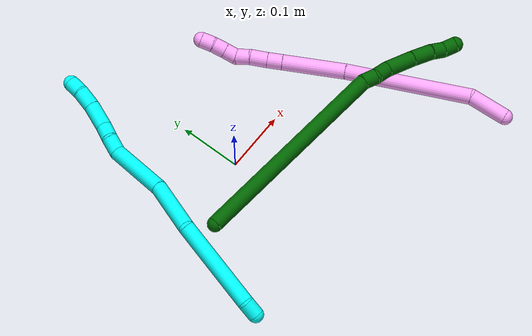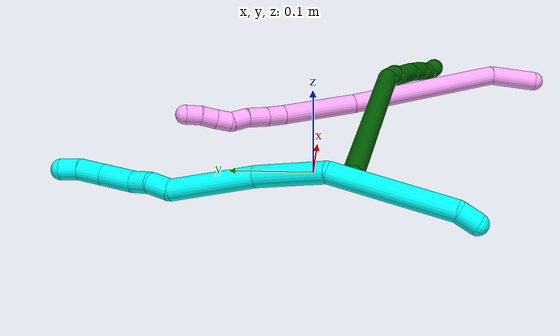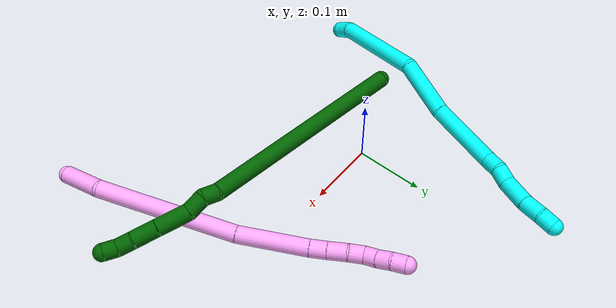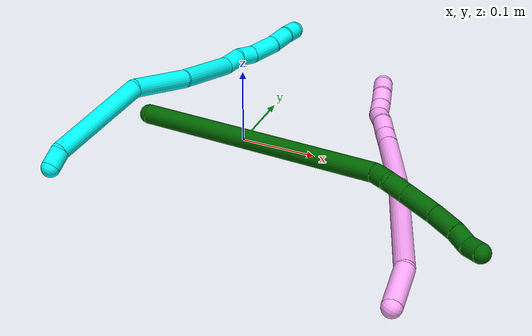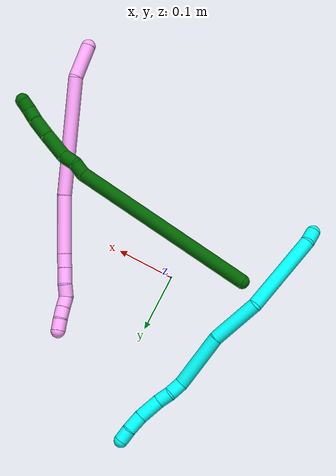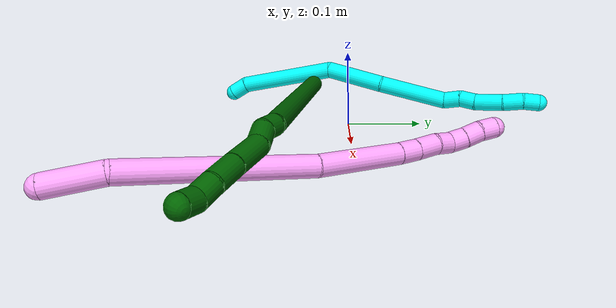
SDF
<sdf version="1.7">
 <world name="default">
  <model name="photoneo_s_sensor">
   <static>1</static>
   <pose>0 0 2 1.57079 1.57079 3.14159</pose>
   <link name="link">
    <inertial><mass>0.1</mass></inertial>
    <sensor name="sensor" type="depth">
     <update_rate>30</update_rate>
     <camera>
      <horizontal_fov>1.22</horizontal_fov>
      <image><width>1920</width><height>1200</height><format>B8G8R8</format></image>
      <clip><near>0.1</near><far>4</far></clip>
      <depth_camera><output>points</output></depth_camera>
     </camera>
     <plugin name="camera_plugin" filename="libgazebo_ros_depth_camera.so">
      <baseline>0.2</baseline>
      <alwaysOn>1</alwaysOn>
      <updateRate>0.0</updateRate>
      <cameraName>camera_ir</cameraName>
      <imageTopicName>/camera/color/image_raw</imageTopicName>
      <cameraInfoTopicName>/camera/color/camera_info</cameraInfoTopicName>
      <depthImageTopicName>/camera/depth/image_raw</depthImageTopicName>
      <depthImageCameraInfoTopicName>/camera/depth/camera_info</depthImageCameraInfoTopicName>
      <pointCloudTopicName>/camera/depth/points</pointCloudTopicName>
      <frameName>fr_optical</frameName>
      <pointCloudCutoff>0.1</pointCloudCutoff>
      <pointCloudCutoffMax>2.0</pointCloudCutoffMax>
      <distortionK1>0</distortionK1>
      <distortionK2>0</distortionK2>
      <distortionK3>0</distortionK3>
      <distortionT1>0</distortionT1>
      <distortionT2>0</distortionT2>
      <CxPrime>0</CxPrime>
      <Cx>0</Cx>
      <Cy>0</Cy>
      <focalLength>0</focalLength>
      <hackBaseline>0</hackBaseline>
     </plugin>
    </sensor>
   </link>
  </model>
  <model name="3">
   <static>0</static>
   <link name="3">
    <collision name="collision-cylinder-e_1_1_4">
     <pose>-0.000288 -7e-06 0.012324 0.000545 -0.02337 -6e-06</pose>
     <geometry><cylinder><radius>0.0125</radius><length>0.024654</length></cylinder></geometry>
     <surface>
      <friction><ode><mu>1.16</mu><mu2>1.16</mu2><slip1>0</slip1><slip2>0</slip2></ode></friction>
      <contact><ode><kp>1e+06</kp><kd>1</kd><max_vel>0</max_vel><min_depth>0.001</min_depth></ode></contact>
     </surface>
    </collision>
    <visual name="visual-cylinder-e_1_1_4">
     <pose>-0.000288 -7e-06 0.012324 0.000545 -0.02337 -6e-06</pose>
     <geometry><cylinder><radius>0.0125</radius><length>0.024654</length></cylinder></geometry>
     <material><ambient>0.003922 1 0.996078 1</ambient></material>
    </visual>
    <collision name="collision-cylinder-e_2_4_5">
     <pose>0.011048 0.023267 0.091746 -0.333964 0.162235 -0.027403</pose>
     <geometry><cylinder><radius>0.0125</radius><length>0.143935</length></cylinder></geometry>
     <surface>
      <friction><ode><mu>1.16</mu><mu2>1.16</mu2><slip1>0</slip1><slip2>0</slip2></ode></friction>
      <contact><ode><kp>1e+06</kp><kd>1</kd><max_vel>0</max_vel><min_depth>0.001</min_depth></ode></contact>
     </surface>
    </collision>
    <visual name="visual-cylinder-e_2_4_5">
     <pose>0.011048 0.023267 0.091746 -0.333964 0.162235 -0.027403</pose>
     <geometry><cylinder><radius>0.0125</radius><length>0.143935</length></cylinder></geometry>
     <material><ambient>0.003922 1 0.996078 1</ambient></material>
    </visual>
    <collision name="collision-cylinder-e_3_5_6">
     <pose>0.038435 0.073854 0.189357 -0.730014 0.367446 -0.141776</pose>
     <geometry><cylinder><radius>0.0125</radius><length>0.087751</length></cylinder></geometry>
     <surface>
      <friction><ode><mu>1.16</mu><mu2>1.16</mu2><slip1>0</slip1><slip2>0</slip2></ode></friction>
      <contact><ode><kp>1e+06</kp><kd>1</kd><max_vel>0</max_vel><min_depth>0.001</min_depth></ode></contact>
     </surface>
    </collision>
    <visual name="visual-cylinder-e_3_5_6">
     <pose>0.038435 0.073854 0.189357 -0.730014 0.367446 -0.141776</pose>
     <geometry><cylinder><radius>0.0125</radius><length>0.087751</length></cylinder></geometry>
     <material><ambient>0.003922 1 0.996078 1</ambient></material>
    </visual>
    <collision name="collision-cylinder-e_4_6_7">
     <pose>0.062235 0.136342 0.255217 -0.783032 0.15981 -0.066091</pose>
     <geometry><cylinder><radius>0.0125</radius><length>0.10103</length></cylinder></geometry>
     <surface>
      <friction><ode><mu>1.16</mu><mu2>1.16</mu2><slip1>0</slip1><slip2>0</slip2></ode></friction>
      <contact><ode><kp>1e+06</kp><kd>1</kd><max_vel>0</max_vel><min_depth>0.001</min_depth></ode></contact>
     </surface>
    </collision>
    <visual name="visual-cylinder-e_4_6_7">
     <pose>0.062235 0.136342 0.255217 -0.783032 0.15981 -0.066091</pose>
     <geometry><cylinder><radius>0.0125</radius><length>0.10103</length></cylinder></geometry>
     <material><ambient>0.003922 1 0.996078 1</ambient></material>
    </visual>
    <collision name="collision-cylinder-e_5_7_8">
     <pose>0.07436 0.175498 0.302337 -0.325653 0.317785 -0.052638</pose>
     <geometry><cylinder><radius>0.0125</radius><length>0.026161</length></cylinder></geometry>
     <surface>
      <friction><ode><mu>1.16</mu><mu2>1.16</mu2><slip1>0</slip1><slip2>0</slip2></ode></friction>
      <contact><ode><kp>1e+06</kp><kd>1</kd><max_vel>0</max_vel><min_depth>0.001</min_depth></ode></contact>
     </surface>
    </collision>
    <visual name="visual-cylinder-e_5_7_8">
     <pose>0.07436 0.175498 0.302337 -0.325653 0.317785 -0.052638</pose>
     <geometry><cylinder><radius>0.0125</radius><length>0.026161</length></cylinder></geometry>
     <material><ambient>0.003922 1 0.996078 1</ambient></material>
    </visual>
    <collision name="collision-cylinder-e_6_8_9">
     <pose>0.083747 0.185766 0.322446 -0.646593 0.469525 -0.159929</pose>
     <geometry><cylinder><radius>0.0125</radius><length>0.023425</length></cylinder></geometry>
     <surface>
      <friction><ode><mu>1.16</mu><mu2>1.16</mu2><slip1>0</slip1><slip2>0</slip2></ode></friction>
      <contact><ode><kp>1e+06</kp><kd>1</kd><max_vel>0</max_vel><min_depth>0.001</min_depth></ode></contact>
     </surface>
    </collision>
    <visual name="visual-cylinder-e_6_8_9">
     <pose>0.083747 0.185766 0.322446 -0.646593 0.469525 -0.159929</pose>
     <geometry><cylinder><radius>0.0125</radius><length>0.023425</length></cylinder></geometry>
     <material><ambient>0.003922 1 0.996078 1</ambient></material>
    </visual>
    <collision name="collision-cylinder-e_7_9_10">
     <pose>0.095947 0.200497 0.348006 -0.4556 0.345371 -0.080827</pose>
     <geometry><cylinder><radius>0.0125</radius><length>0.040766</length></cylinder></geometry>
     <surface>
      <friction><ode><mu>1.16</mu><mu2>1.16</mu2><slip1>0</slip1><slip2>0</slip2></ode></friction>
      <contact><ode><kp>1e+06</kp><kd>1</kd><max_vel>0</max_vel><min_depth>0.001</min_depth></ode></contact>
     </surface>
    </collision>
    <visual name="visual-cylinder-e_7_9_10">
     <pose>0.095947 0.200497 0.348006 -0.4556 0.345371 -0.080827</pose>
     <geometry><cylinder><radius>0.0125</radius><length>0.040766</length></cylinder></geometry>
     <material><ambient>0.003922 1 0.996078 1</ambient></material>
    </visual>
    <collision name="collision-cylinder-e_8_10_11">
     <pose>0.105803 0.214815 0.37853 -0.416133 0.200512 -0.042469</pose>
     <geometry><cylinder><radius>0.0125</radius><length>0.02968</length></cylinder></geometry>
     <surface>
      <friction><ode><mu>1.16</mu><mu2>1.16</mu2><slip1>0</slip1><slip2>0</slip2></ode></friction>
      <contact><ode><kp>1e+06</kp><kd>1</kd><max_vel>0</max_vel><min_depth>0.001</min_depth></ode></contact>
     </surface>
    </collision>
    <visual name="visual-cylinder-e_8_10_11">
     <pose>0.105803 0.214815 0.37853 -0.416133 0.200512 -0.042469</pose>
     <geometry><cylinder><radius>0.0125</radius><length>0.02968</length></cylinder></geometry>
     <material><ambient>0.003922 1 0.996078 1</ambient></material>
    </visual>
    <collision name="collision-cylinder-e_9_11_2">
     <pose>0.110356 0.227239 0.400902 -0.625115 0.141842 -0.045905</pose>
     <geometry><cylinder><radius>0.0125</radius><length>0.022597</length></cylinder></geometry>
     <surface>
      <friction><ode><mu>1.16</mu><mu2>1.16</mu2><slip1>0</slip1><slip2>0</slip2></ode></friction>
      <contact><ode><kp>1e+06</kp><kd>1</kd><max_vel>0</max_vel><min_depth>0.001</min_depth></ode></contact>
     </surface>
    </collision>
    <visual name="visual-cylinder-e_9_11_2">
     <pose>0.110356 0.227239 0.400902 -0.625115 0.141842 -0.045905</pose>
     <geometry><cylinder><radius>0.0125</radius><length>0.022597</length></cylinder></geometry>
     <material><ambient>0.003922 1 0.996078 1</ambient></material>
    </visual>
    <collision name="collision-sphere-2">
     <pose>0.111953 0.233784 0.409972 0 -0 0</pose>
     <geometry><sphere><radius>0.0125</radius></sphere></geometry>
     <surface>
      <friction><ode><mu>1.16</mu><mu2>1.16</mu2><slip1>0</slip1><slip2>0</slip2></ode></friction>
      <contact><ode><kp>1e+06</kp><kd>1</kd><max_vel>0</max_vel><min_depth>0.001</min_depth></ode></contact>
     </surface>
    </collision>
    <visual name="visual-sphere-2">
     <pose>0.111953 0.233784 0.409972 0 -0 0</pose>
     <geometry><sphere><radius>0.0125</radius></sphere></geometry>
     <material><ambient>0.003922 1 0.996078 1</ambient></material>
    </visual>
    <collision name="collision-sphere-11">
     <pose>0.108759 0.220693 0.391832 0 -0 0</pose>
     <geometry><sphere><radius>0.0125</radius></sphere></geometry>
     <surface>
      <friction><ode><mu>1.16</mu><mu2>1.16</mu2><slip1>0</slip1><slip2>0</slip2></ode></friction>
      <contact><ode><kp>1e+06</kp><kd>1</kd><max_vel>0</max_vel><min_depth>0.001</min_depth></ode></contact>
     </surface>
    </collision>
    <visual name="visual-sphere-11">
     <pose>0.108759 0.220693 0.391832 0 -0 0</pose>
     <geometry><sphere><radius>0.0125</radius></sphere></geometry>
     <material><ambient>0.003922 1 0.996078 1</ambient></material>
    </visual>
    <collision name="collision-sphere-10">
     <pose>0.102848 0.208936 0.365229 0 -0 0</pose>
     <geometry><sphere><radius>0.0125</radius></sphere></geometry>
     <surface>
      <friction><ode><mu>1.16</mu><mu2>1.16</mu2><slip1>0</slip1><slip2>0</slip2></ode></friction>
      <contact><ode><kp>1e+06</kp><kd>1</kd><max_vel>0</max_vel><min_depth>0.001</min_depth></ode></contact>
     </surface>
    </collision>
    <visual name="visual-sphere-10">
     <pose>0.102848 0.208936 0.365229 0 -0 0</pose>
     <geometry><sphere><radius>0.0125</radius></sphere></geometry>
     <material><ambient>0.003922 1 0.996078 1</ambient></material>
    </visual>
    <collision name="collision-sphere-9">
     <pose>0.089046 0.192058 0.330783 0 -0 0</pose>
     <geometry><sphere><radius>0.0125</radius></sphere></geometry>
     <surface>
      <friction><ode><mu>1.16</mu><mu2>1.16</mu2><slip1>0</slip1><slip2>0</slip2></ode></friction>
      <contact><ode><kp>1e+06</kp><kd>1</kd><max_vel>0</max_vel><min_depth>0.001</min_depth></ode></contact>
     </surface>
    </collision>
    <visual name="visual-sphere-9">
     <pose>0.089046 0.192058 0.330783 0 -0 0</pose>
     <geometry><sphere><radius>0.0125</radius></sphere></geometry>
     <material><ambient>0.003922 1 0.996078 1</ambient></material>
    </visual>
    <collision name="collision-sphere-4">
     <pose>-0.000576 -1.3e-05 0.024648 0 -0 0</pose>
     <geometry><sphere><radius>0.0125</radius></sphere></geometry>
     <surface>
      <friction><ode><mu>1.16</mu><mu2>1.16</mu2><slip1>0</slip1><slip2>0</slip2></ode></friction>
      <contact><ode><kp>1e+06</kp><kd>1</kd><max_vel>0</max_vel><min_depth>0.001</min_depth></ode></contact>
     </surface>
    </collision>
    <visual name="visual-sphere-4">
     <pose>-0.000576 -1.3e-05 0.024648 0 -0 0</pose>
     <geometry><sphere><radius>0.0125</radius></sphere></geometry>
     <material><ambient>0.003922 1 0.996078 1</ambient></material>
    </visual>
    <collision name="collision-sphere-1">
     <geometry><sphere><radius>0.0125</radius></sphere></geometry>
     <surface>
      <friction><ode><mu>1.16</mu><mu2>1.16</mu2><slip1>0</slip1><slip2>0</slip2></ode></friction>
      <contact><ode><kp>1e+06</kp><kd>1</kd><max_vel>0</max_vel><min_depth>0.001</min_depth></ode></contact>
     </surface>
    </collision>
    <visual name="visual-sphere-1">
     <geometry><sphere><radius>0.0125</radius></sphere></geometry>
     <material><ambient>0.003922 1 0.996078 1</ambient></material>
    </visual>
    <collision name="collision-sphere-8">
     <pose>0.078448 0.179473 0.31411 0 -0 0</pose>
     <geometry><sphere><radius>0.0125</radius></sphere></geometry>
     <surface>
      <friction><ode><mu>1.16</mu><mu2>1.16</mu2><slip1>0</slip1><slip2>0</slip2></ode></friction>
      <contact><ode><kp>1e+06</kp><kd>1</kd><max_vel>0</max_vel><min_depth>0.001</min_depth></ode></contact>
     </surface>
    </collision>
    <visual name="visual-sphere-8">
     <pose>0.078448 0.179473 0.31411 0 -0 0</pose>
     <geometry><sphere><radius>0.0125</radius></sphere></geometry>
     <material><ambient>0.003922 1 0.996078 1</ambient></material>
    </visual>
    <collision name="collision-sphere-5">
     <pose>0.022673 0.046548 0.158845 0 -0 0</pose>
     <geometry><sphere><radius>0.0125</radius></sphere></geometry>
     <surface>
      <friction><ode><mu>1.16</mu><mu2>1.16</mu2><slip1>0</slip1><slip2>0</slip2></ode></friction>
      <contact><ode><kp>1e+06</kp><kd>1</kd><max_vel>0</max_vel><min_depth>0.001</min_depth></ode></contact>
     </surface>
    </collision>
    <visual name="visual-sphere-5">
     <pose>0.022673 0.046548 0.158845 0 -0 0</pose>
     <geometry><sphere><radius>0.0125</radius></sphere></geometry>
     <material><ambient>0.003922 1 0.996078 1</ambient></material>
    </visual>
    <collision name="collision-sphere-6">
     <pose>0.054196 0.101161 0.219869 0 -0 0</pose>
     <geometry><sphere><radius>0.0125</radius></sphere></geometry>
     <surface>
      <friction><ode><mu>1.16</mu><mu2>1.16</mu2><slip1>0</slip1><slip2>0</slip2></ode></friction>
      <contact><ode><kp>1e+06</kp><kd>1</kd><max_vel>0</max_vel><min_depth>0.001</min_depth></ode></contact>
     </surface>
    </collision>
    <visual name="visual-sphere-6">
     <pose>0.054196 0.101161 0.219869 0 -0 0</pose>
     <geometry><sphere><radius>0.0125</radius></sphere></geometry>
     <material><ambient>0.003922 1 0.996078 1</ambient></material>
    </visual>
    <collision name="collision-sphere-7">
     <pose>0.070273 0.171522 0.290564 0 -0 0</pose>
     <geometry><sphere><radius>0.0125</radius></sphere></geometry>
     <surface>
      <friction><ode><mu>1.16</mu><mu2>1.16</mu2><slip1>0</slip1><slip2>0</slip2></ode></friction>
      <contact><ode><kp>1e+06</kp><kd>1</kd><max_vel>0</max_vel><min_depth>0.001</min_depth></ode></contact>
     </surface>
    </collision>
    <visual name="visual-sphere-7">
     <pose>0.070273 0.171522 0.290564 0 -0 0</pose>
     <geometry><sphere><radius>0.0125</radius></sphere></geometry>
     <material><ambient>0.003922 1 0.996078 1</ambient></material>
    </visual>
    <inertial>
     <pose>0.049392 0.104462 0.211708 0 -0 0</pose>
     <mass>0.5</mass>
     <inertia>
      <ixx>0.0004</ixx>
      <ixy>0</ixy>
      <ixz>0</ixz>
      <iyy>0.000365</iyy>
      <iyz>0</iyz>
      <izz>-0.000239</izz>
     </inertia>
    </inertial>
   </link>
   <pose>-0.181386 -0.180864 0.012488 -1.00466 0.156921 -0.034101</pose>
  </model>
  <model name="4">
   <static>0</static>
   <link name="4">
    <collision name="collision-cylinder-e_1_1_4">
     <pose>0.015401 0.021391 0.014574 -0.972699 0.536748 -0.288775</pose>
     <geometry><cylinder><radius>0.0125</radius><length>0.060239</length></cylinder></geometry>
     <surface>
      <friction><ode><mu>1.16</mu><mu2>1.16</mu2><slip1>0</slip1><slip2>0</slip2></ode></friction>
      <contact><ode><kp>1e+06</kp><kd>1</kd><max_vel>0</max_vel><min_depth>0.001</min_depth></ode></contact>
     </surface>
    </collision>
    <visual name="visual-cylinder-e_1_1_4">
     <pose>0.015401 0.021391 0.014574 -0.972699 0.536748 -0.288775</pose>
     <geometry><cylinder><radius>0.0125</radius><length>0.060239</length></cylinder></geometry>
     <material><ambient>1 0.65098 0.996078 1</ambient></material>
    </visual>
    <collision name="collision-cylinder-e_2_4_5">
     <pose>0.079528 0.130399 0.045098 -1.39074 0.500633 -0.420378</pose>
     <geometry><cylinder><radius>0.0125</radius><length>0.203032</length></cylinder></geometry>
     <surface>
      <friction><ode><mu>1.16</mu><mu2>1.16</mu2><slip1>0</slip1><slip2>0</slip2></ode></friction>
      <contact><ode><kp>1e+06</kp><kd>1</kd><max_vel>0</max_vel><min_depth>0.001</min_depth></ode></contact>
     </surface>
    </collision>
    <visual name="visual-cylinder-e_2_4_5">
     <pose>0.079528 0.130399 0.045098 -1.39074 0.500633 -0.420378</pose>
     <geometry><cylinder><radius>0.0125</radius><length>0.203032</length></cylinder></geometry>
     <material><ambient>1 0.65098 0.996078 1</ambient></material>
    </visual>
    <collision name="collision-cylinder-e_3_5_6">
     <pose>0.146618 0.264355 0.070188 -1.37602 0.370818 -0.305944</pose>
     <geometry><cylinder><radius>0.0125</radius><length>0.101351</length></cylinder></geometry>
     <surface>
      <friction><ode><mu>1.16</mu><mu2>1.16</mu2><slip1>0</slip1><slip2>0</slip2></ode></friction>
      <contact><ode><kp>1e+06</kp><kd>1</kd><max_vel>0</max_vel><min_depth>0.001</min_depth></ode></contact>
     </surface>
    </collision>
    <visual name="visual-cylinder-e_3_5_6">
     <pose>0.146618 0.264355 0.070188 -1.37602 0.370818 -0.305944</pose>
     <geometry><cylinder><radius>0.0125</radius><length>0.101351</length></cylinder></geometry>
     <material><ambient>1 0.65098 0.996078 1</ambient></material>
    </visual>
    <collision name="collision-cylinder-e_4_6_7">
     <pose>0.168751 0.322018 0.081901 -1.34746 0.313869 -0.251322</pose>
     <geometry><cylinder><radius>0.0125</radius><length>0.024419</length></cylinder></geometry>
     <surface>
      <friction><ode><mu>1.16</mu><mu2>1.16</mu2><slip1>0</slip1><slip2>0</slip2></ode></friction>
      <contact><ode><kp>1e+06</kp><kd>1</kd><max_vel>0</max_vel><min_depth>0.001</min_depth></ode></contact>
     </surface>
    </collision>
    <visual name="visual-cylinder-e_4_6_7">
     <pose>0.168751 0.322018 0.081901 -1.34746 0.313869 -0.251322</pose>
     <geometry><cylinder><radius>0.0125</radius><length>0.024419</length></cylinder></geometry>
     <material><ambient>1 0.65098 0.996078 1</ambient></material>
    </visual>
    <collision name="collision-cylinder-e_5_7_8">
     <pose>0.176446 0.346105 0.088109 -1.29331 0.287622 -0.217781</pose>
     <geometry><cylinder><radius>0.0125</radius><length>0.027677</length></cylinder></geometry>
     <surface>
      <friction><ode><mu>1.16</mu><mu2>1.16</mu2><slip1>0</slip1><slip2>0</slip2></ode></friction>
      <contact><ode><kp>1e+06</kp><kd>1</kd><max_vel>0</max_vel><min_depth>0.001</min_depth></ode></contact>
     </surface>
    </collision>
    <visual name="visual-cylinder-e_5_7_8">
     <pose>0.176446 0.346105 0.088109 -1.29331 0.287622 -0.217781</pose>
     <geometry><cylinder><radius>0.0125</radius><length>0.027677</length></cylinder></geometry>
     <material><ambient>1 0.65098 0.996078 1</ambient></material>
    </visual>
    <collision name="collision-cylinder-e_6_8_9">
     <pose>0.183994 0.369459 0.092556 -1.4943 0.328641 -0.304805</pose>
     <geometry><cylinder><radius>0.0125</radius><length>0.022445</length></cylinder></geometry>
     <surface>
      <friction><ode><mu>1.16</mu><mu2>1.16</mu2><slip1>0</slip1><slip2>0</slip2></ode></friction>
      <contact><ode><kp>1e+06</kp><kd>1</kd><max_vel>0</max_vel><min_depth>0.001</min_depth></ode></contact>
     </surface>
    </collision>
    <visual name="visual-cylinder-e_6_8_9">
     <pose>0.183994 0.369459 0.092556 -1.4943 0.328641 -0.304805</pose>
     <geometry><cylinder><radius>0.0125</radius><length>0.022445</length></cylinder></geometry>
     <material><ambient>1 0.65098 0.996078 1</ambient></material>
    </visual>
    <collision name="collision-cylinder-e_7_9_10">
     <pose>0.191693 0.387626 0.098491 -0.976139 0.419274 -0.224963</pose>
     <geometry><cylinder><radius>0.0125</radius><length>0.020028</length></cylinder></geometry>
     <surface>
      <friction><ode><mu>1.16</mu><mu2>1.16</mu2><slip1>0</slip1><slip2>0</slip2></ode></friction>
      <contact><ode><kp>1e+06</kp><kd>1</kd><max_vel>0</max_vel><min_depth>0.001</min_depth></ode></contact>
     </surface>
    </collision>
    <visual name="visual-cylinder-e_7_9_10">
     <pose>0.191693 0.387626 0.098491 -0.976139 0.419274 -0.224963</pose>
     <geometry><cylinder><radius>0.0125</radius><length>0.020028</length></cylinder></geometry>
     <material><ambient>1 0.65098 0.996078 1</ambient></material>
    </visual>
    <collision name="collision-cylinder-e_8_10_11">
     <pose>0.19902 0.403199 0.10918 -0.962872 0.322087 -0.169334</pose>
     <geometry><cylinder><radius>0.0125</radius><length>0.020539</length></cylinder></geometry>
     <surface>
      <friction><ode><mu>1.16</mu><mu2>1.16</mu2><slip1>0</slip1><slip2>0</slip2></ode></friction>
      <contact><ode><kp>1e+06</kp><kd>1</kd><max_vel>0</max_vel><min_depth>0.001</min_depth></ode></contact>
     </surface>
    </collision>
    <visual name="visual-cylinder-e_8_10_11">
     <pose>0.19902 0.403199 0.10918 -0.962872 0.322087 -0.169334</pose>
     <geometry><cylinder><radius>0.0125</radius><length>0.020539</length></cylinder></geometry>
     <material><ambient>1 0.65098 0.996078 1</ambient></material>
    </visual>
    <collision name="collision-cylinder-e_9_11_2">
     <pose>0.206362 0.419559 0.118747 -1.12444 0.415453 -0.264042</pose>
     <geometry><cylinder><radius>0.0125</radius><length>0.02027</length></cylinder></geometry>
     <surface>
      <friction><ode><mu>1.16</mu><mu2>1.16</mu2><slip1>0</slip1><slip2>0</slip2></ode></friction>
      <contact><ode><kp>1e+06</kp><kd>1</kd><max_vel>0</max_vel><min_depth>0.001</min_depth></ode></contact>
     </surface>
    </collision>
    <visual name="visual-cylinder-e_9_11_2">
     <pose>0.206362 0.419559 0.118747 -1.12444 0.415453 -0.264042</pose>
     <geometry><cylinder><radius>0.0125</radius><length>0.02027</length></cylinder></geometry>
     <material><ambient>1 0.65098 0.996078 1</ambient></material>
    </visual>
    <collision name="collision-sphere-2">
     <pose>0.210452 0.427924 0.122749 0 -0 0</pose>
     <geometry><sphere><radius>0.0125</radius></sphere></geometry>
     <surface>
      <friction><ode><mu>1.16</mu><mu2>1.16</mu2><slip1>0</slip1><slip2>0</slip2></ode></friction>
      <contact><ode><kp>1e+06</kp><kd>1</kd><max_vel>0</max_vel><min_depth>0.001</min_depth></ode></contact>
     </surface>
    </collision>
    <visual name="visual-sphere-2">
     <pose>0.210452 0.427924 0.122749 0 -0 0</pose>
     <geometry><sphere><radius>0.0125</radius></sphere></geometry>
     <material><ambient>1 0.65098 0.996078 1</ambient></material>
    </visual>
    <collision name="collision-sphere-11">
     <pose>0.202271 0.411195 0.114744 0 -0 0</pose>
     <geometry><sphere><radius>0.0125</radius></sphere></geometry>
     <surface>
      <friction><ode><mu>1.16</mu><mu2>1.16</mu2><slip1>0</slip1><slip2>0</slip2></ode></friction>
      <contact><ode><kp>1e+06</kp><kd>1</kd><max_vel>0</max_vel><min_depth>0.001</min_depth></ode></contact>
     </surface>
    </collision>
    <visual name="visual-sphere-11">
     <pose>0.202271 0.411195 0.114744 0 -0 0</pose>
     <geometry><sphere><radius>0.0125</radius></sphere></geometry>
     <material><ambient>1 0.65098 0.996078 1</ambient></material>
    </visual>
    <collision name="collision-sphere-10">
     <pose>0.195769 0.395202 0.103616 0 -0 0</pose>
     <geometry><sphere><radius>0.0125</radius></sphere></geometry>
     <surface>
      <friction><ode><mu>1.16</mu><mu2>1.16</mu2><slip1>0</slip1><slip2>0</slip2></ode></friction>
      <contact><ode><kp>1e+06</kp><kd>1</kd><max_vel>0</max_vel><min_depth>0.001</min_depth></ode></contact>
     </surface>
    </collision>
    <visual name="visual-sphere-10">
     <pose>0.195769 0.395202 0.103616 0 -0 0</pose>
     <geometry><sphere><radius>0.0125</radius></sphere></geometry>
     <material><ambient>1 0.65098 0.996078 1</ambient></material>
    </visual>
    <collision name="collision-sphere-9">
     <pose>0.187616 0.380049 0.093367 0 -0 0</pose>
     <geometry><sphere><radius>0.0125</radius></sphere></geometry>
     <surface>
      <friction><ode><mu>1.16</mu><mu2>1.16</mu2><slip1>0</slip1><slip2>0</slip2></ode></friction>
      <contact><ode><kp>1e+06</kp><kd>1</kd><max_vel>0</max_vel><min_depth>0.001</min_depth></ode></contact>
     </surface>
    </collision>
    <visual name="visual-sphere-9">
     <pose>0.187616 0.380049 0.093367 0 -0 0</pose>
     <geometry><sphere><radius>0.0125</radius></sphere></geometry>
     <material><ambient>1 0.65098 0.996078 1</ambient></material>
    </visual>
    <collision name="collision-sphere-4">
     <pose>0.030803 0.042781 0.029149 0 -0 0</pose>
     <geometry><sphere><radius>0.0125</radius></sphere></geometry>
     <surface>
      <friction><ode><mu>1.16</mu><mu2>1.16</mu2><slip1>0</slip1><slip2>0</slip2></ode></friction>
      <contact><ode><kp>1e+06</kp><kd>1</kd><max_vel>0</max_vel><min_depth>0.001</min_depth></ode></contact>
     </surface>
    </collision>
    <visual name="visual-sphere-4">
     <pose>0.030803 0.042781 0.029149 0 -0 0</pose>
     <geometry><sphere><radius>0.0125</radius></sphere></geometry>
     <material><ambient>1 0.65098 0.996078 1</ambient></material>
    </visual>
    <collision name="collision-sphere-1">
     <geometry><sphere><radius>0.0125</radius></sphere></geometry>
     <surface>
      <friction><ode><mu>1.16</mu><mu2>1.16</mu2><slip1>0</slip1><slip2>0</slip2></ode></friction>
      <contact><ode><kp>1e+06</kp><kd>1</kd><max_vel>0</max_vel><min_depth>0.001</min_depth></ode></contact>
     </surface>
    </collision>
    <visual name="visual-sphere-1">
     <geometry><sphere><radius>0.0125</radius></sphere></geometry>
     <material><ambient>1 0.65098 0.996078 1</ambient></material>
    </visual>
    <collision name="collision-sphere-8">
     <pose>0.180372 0.358868 0.091744 0 -0 0</pose>
     <geometry><sphere><radius>0.0125</radius></sphere></geometry>
     <surface>
      <friction><ode><mu>1.16</mu><mu2>1.16</mu2><slip1>0</slip1><slip2>0</slip2></ode></friction>
      <contact><ode><kp>1e+06</kp><kd>1</kd><max_vel>0</max_vel><min_depth>0.001</min_depth></ode></contact>
     </surface>
    </collision>
    <visual name="visual-sphere-8">
     <pose>0.180372 0.358868 0.091744 0 -0 0</pose>
     <geometry><sphere><radius>0.0125</radius></sphere></geometry>
     <material><ambient>1 0.65098 0.996078 1</ambient></material>
    </visual>
    <collision name="collision-sphere-5">
     <pose>0.128254 0.218017 0.061046 0 -0 0</pose>
     <geometry><sphere><radius>0.0125</radius></sphere></geometry>
     <surface>
      <friction><ode><mu>1.16</mu><mu2>1.16</mu2><slip1>0</slip1><slip2>0</slip2></ode></friction>
      <contact><ode><kp>1e+06</kp><kd>1</kd><max_vel>0</max_vel><min_depth>0.001</min_depth></ode></contact>
     </surface>
    </collision>
    <visual name="visual-sphere-5">
     <pose>0.128254 0.218017 0.061046 0 -0 0</pose>
     <geometry><sphere><radius>0.0125</radius></sphere></geometry>
     <material><ambient>1 0.65098 0.996078 1</ambient></material>
    </visual>
    <collision name="collision-sphere-6">
     <pose>0.164981 0.310693 0.079329 0 -0 0</pose>
     <geometry><sphere><radius>0.0125</radius></sphere></geometry>
     <surface>
      <friction><ode><mu>1.16</mu><mu2>1.16</mu2><slip1>0</slip1><slip2>0</slip2></ode></friction>
      <contact><ode><kp>1e+06</kp><kd>1</kd><max_vel>0</max_vel><min_depth>0.001</min_depth></ode></contact>
     </surface>
    </collision>
    <visual name="visual-sphere-6">
     <pose>0.164981 0.310693 0.079329 0 -0 0</pose>
     <geometry><sphere><radius>0.0125</radius></sphere></geometry>
     <material><ambient>1 0.65098 0.996078 1</ambient></material>
    </visual>
    <collision name="collision-sphere-7">
     <pose>0.172521 0.333343 0.084473 0 -0 0</pose>
     <geometry><sphere><radius>0.0125</radius></sphere></geometry>
     <surface>
      <friction><ode><mu>1.16</mu><mu2>1.16</mu2><slip1>0</slip1><slip2>0</slip2></ode></friction>
      <contact><ode><kp>1e+06</kp><kd>1</kd><max_vel>0</max_vel><min_depth>0.001</min_depth></ode></contact>
     </surface>
    </collision>
    <visual name="visual-sphere-7">
     <pose>0.172521 0.333343 0.084473 0 -0 0</pose>
     <geometry><sphere><radius>0.0125</radius></sphere></geometry>
     <material><ambient>1 0.65098 0.996078 1</ambient></material>
    </visual>
    <inertial>
     <pose>0.114357 0.209682 0.060572 0 -0 0</pose>
     <mass>0.5</mass>
     <inertia>
      <ixx>0.000404</ixx>
      <ixy>0</ixy>
      <ixz>0</ixz>
      <iyy>4.4e-05</iyy>
      <iyz>0</iyz>
      <izz>-0.001092</izz>
     </inertia>
    </inertial>
   </link>
   <pose>0.310583 -0.288502 0.024341 0.017735 0.544203 0.902048</pose>
  </model>
  <model name="6">
   <static>0</static>
   <link name="6">
    <collision name="collision-cylinder-e_1_1_4">
     <pose>0.111186 -0.039362 0.112643 0.336173 0.750115 0.133411</pose>
     <geometry><cylinder><radius>0.0125</radius><length>0.326191</length></cylinder></geometry>
     <surface>
      <friction><ode><mu>1.16</mu><mu2>1.16</mu2><slip1>0</slip1><slip2>0</slip2></ode></friction>
      <contact><ode><kp>1e+06</kp><kd>1</kd><max_vel>0</max_vel><min_depth>0.001</min_depth></ode></contact>
     </surface>
    </collision>
    <visual name="visual-cylinder-e_1_1_4">
     <pose>0.111186 -0.039362 0.112643 0.336173 0.750115 0.133411</pose>
     <geometry><cylinder><radius>0.0125</radius><length>0.326191</length></cylinder></geometry>
     <material><ambient>0 0.392157 0.003922 1</ambient></material>
    </visual>
    <collision name="collision-cylinder-e_2_4_5">
     <pose>0.232061 -0.08057 0.229944 0.37744 1.09353 0.231462</pose>
     <geometry><cylinder><radius>0.0125</radius><length>0.021817</length></cylinder></geometry>
     <surface>
      <friction><ode><mu>1.16</mu><mu2>1.16</mu2><slip1>0</slip1><slip2>0</slip2></ode></friction>
      <contact><ode><kp>1e+06</kp><kd>1</kd><max_vel>0</max_vel><min_depth>0.001</min_depth></ode></contact>
     </surface>
    </collision>
    <visual name="visual-cylinder-e_2_4_5">
     <pose>0.232061 -0.08057 0.229944 0.37744 1.09353 0.231462</pose>
     <geometry><cylinder><radius>0.0125</radius><length>0.021817</length></cylinder></geometry>
     <material><ambient>0 0.392157 0.003922 1</ambient></material>
    </visual>
    <collision name="collision-cylinder-e_3_5_6">
     <pose>0.251045 -0.080259 0.24369 -0.233121 0.782921 -0.096587</pose>
     <geometry><cylinder><radius>0.0125</radius><length>0.026352</length></cylinder></geometry>
     <surface>
      <friction><ode><mu>1.16</mu><mu2>1.16</mu2><slip1>0</slip1><slip2>0</slip2></ode></friction>
      <contact><ode><kp>1e+06</kp><kd>1</kd><max_vel>0</max_vel><min_depth>0.001</min_depth></ode></contact>
     </surface>
    </collision>
    <visual name="visual-cylinder-e_3_5_6">
     <pose>0.251045 -0.080259 0.24369 -0.233121 0.782921 -0.096587</pose>
     <geometry><cylinder><radius>0.0125</radius><length>0.026352</length></cylinder></geometry>
     <material><ambient>0 0.392157 0.003922 1</ambient></material>
    </visual>
    <collision name="collision-cylinder-e_4_6_7">
     <pose>0.280847 -0.079138 0.26402 0.091944 1.06756 0.054365</pose>
     <geometry><cylinder><radius>0.0125</radius><length>0.046823</length></cylinder></geometry>
     <surface>
      <friction><ode><mu>1.16</mu><mu2>1.16</mu2><slip1>0</slip1><slip2>0</slip2></ode></friction>
      <contact><ode><kp>1e+06</kp><kd>1</kd><max_vel>0</max_vel><min_depth>0.001</min_depth></ode></contact>
     </surface>
    </collision>
    <visual name="visual-cylinder-e_4_6_7">
     <pose>0.280847 -0.079138 0.26402 0.091944 1.06756 0.054365</pose>
     <geometry><cylinder><radius>0.0125</radius><length>0.046823</length></cylinder></geometry>
     <material><ambient>0 0.392157 0.003922 1</ambient></material>
    </visual>
    <collision name="collision-cylinder-e_5_7_8">
     <pose>0.316745 -0.08005 0.2832 -0.015707 1.09454 -0.009571</pose>
     <geometry><cylinder><radius>0.0125</radius><length>0.03463</length></cylinder></geometry>
     <surface>
      <friction><ode><mu>1.16</mu><mu2>1.16</mu2><slip1>0</slip1><slip2>0</slip2></ode></friction>
      <contact><ode><kp>1e+06</kp><kd>1</kd><max_vel>0</max_vel><min_depth>0.001</min_depth></ode></contact>
     </surface>
    </collision>
    <visual name="visual-cylinder-e_5_7_8">
     <pose>0.316745 -0.08005 0.2832 -0.015707 1.09454 -0.009571</pose>
     <geometry><cylinder><radius>0.0125</radius><length>0.03463</length></cylinder></geometry>
     <material><ambient>0 0.392157 0.003922 1</ambient></material>
    </visual>
    <collision name="collision-cylinder-e_6_8_9">
     <pose>0.342753 -0.078226 0.29543 -0.376836 1.16068 -0.248751</pose>
     <geometry><cylinder><radius>0.0125</radius><length>0.02316</length></cylinder></geometry>
     <surface>
      <friction><ode><mu>1.16</mu><mu2>1.16</mu2><slip1>0</slip1><slip2>0</slip2></ode></friction>
      <contact><ode><kp>1e+06</kp><kd>1</kd><max_vel>0</max_vel><min_depth>0.001</min_depth></ode></contact>
     </surface>
    </collision>
    <visual name="visual-cylinder-e_6_8_9">
     <pose>0.342753 -0.078226 0.29543 -0.376836 1.16068 -0.248751</pose>
     <geometry><cylinder><radius>0.0125</radius><length>0.02316</length></cylinder></geometry>
     <material><ambient>0 0.392157 0.003922 1</ambient></material>
    </visual>
    <collision name="collision-cylinder-e_7_9_2">
     <pose>0.362744 -0.079066 0.303756 0.561837 1.10041 0.350355</pose>
     <geometry><cylinder><radius>0.0125</radius><length>0.021027</length></cylinder></geometry>
     <surface>
      <friction><ode><mu>1.16</mu><mu2>1.16</mu2><slip1>0</slip1><slip2>0</slip2></ode></friction>
      <contact><ode><kp>1e+06</kp><kd>1</kd><max_vel>0</max_vel><min_depth>0.001</min_depth></ode></contact>
     </surface>
    </collision>
    <visual name="visual-cylinder-e_7_9_2">
     <pose>0.362744 -0.079066 0.303756 0.561837 1.10041 0.350355</pose>
     <geometry><cylinder><radius>0.0125</radius><length>0.021027</length></cylinder></geometry>
     <material><ambient>0 0.392157 0.003922 1</ambient></material>
    </visual>
    <collision name="collision-sphere-2">
     <pose>0.372116 -0.081604 0.307789 0 -0 0</pose>
     <geometry><sphere><radius>0.0125</radius></sphere></geometry>
     <surface>
      <friction><ode><mu>1.16</mu><mu2>1.16</mu2><slip1>0</slip1><slip2>0</slip2></ode></friction>
      <contact><ode><kp>1e+06</kp><kd>1</kd><max_vel>0</max_vel><min_depth>0.001</min_depth></ode></contact>
     </surface>
    </collision>
    <visual name="visual-sphere-2">
     <pose>0.372116 -0.081604 0.307789 0 -0 0</pose>
     <geometry><sphere><radius>0.0125</radius></sphere></geometry>
     <material><ambient>0 0.392157 0.003922 1</ambient></material>
    </visual>
    <collision name="collision-sphere-9">
     <pose>0.353372 -0.076527 0.299723 0 -0 0</pose>
     <geometry><sphere><radius>0.0125</radius></sphere></geometry>
     <surface>
      <friction><ode><mu>1.16</mu><mu2>1.16</mu2><slip1>0</slip1><slip2>0</slip2></ode></friction>
      <contact><ode><kp>1e+06</kp><kd>1</kd><max_vel>0</max_vel><min_depth>0.001</min_depth></ode></contact>
     </surface>
    </collision>
    <visual name="visual-sphere-9">
     <pose>0.353372 -0.076527 0.299723 0 -0 0</pose>
     <geometry><sphere><radius>0.0125</radius></sphere></geometry>
     <material><ambient>0 0.392157 0.003922 1</ambient></material>
    </visual>
    <collision name="collision-sphere-4">
     <pose>0.222372 -0.078723 0.225286 0 -0 0</pose>
     <geometry><sphere><radius>0.0125</radius></sphere></geometry>
     <surface>
      <friction><ode><mu>1.16</mu><mu2>1.16</mu2><slip1>0</slip1><slip2>0</slip2></ode></friction>
      <contact><ode><kp>1e+06</kp><kd>1</kd><max_vel>0</max_vel><min_depth>0.001</min_depth></ode></contact>
     </surface>
    </collision>
    <visual name="visual-sphere-4">
     <pose>0.222372 -0.078723 0.225286 0 -0 0</pose>
     <geometry><sphere><radius>0.0125</radius></sphere></geometry>
     <material><ambient>0 0.392157 0.003922 1</ambient></material>
    </visual>
    <collision name="collision-sphere-1">
     <geometry><sphere><radius>0.0125</radius></sphere></geometry>
     <surface>
      <friction><ode><mu>1.16</mu><mu2>1.16</mu2><slip1>0</slip1><slip2>0</slip2></ode></friction>
      <contact><ode><kp>1e+06</kp><kd>1</kd><max_vel>0</max_vel><min_depth>0.001</min_depth></ode></contact>
     </surface>
    </collision>
    <visual name="visual-sphere-1">
     <geometry><sphere><radius>0.0125</radius></sphere></geometry>
     <material><ambient>0 0.392157 0.003922 1</ambient></material>
    </visual>
    <collision name="collision-sphere-8">
     <pose>0.332133 -0.079925 0.291137 0 -0 0</pose>
     <geometry><sphere><radius>0.0125</radius></sphere></geometry>
     <surface>
      <friction><ode><mu>1.16</mu><mu2>1.16</mu2><slip1>0</slip1><slip2>0</slip2></ode></friction>
      <contact><ode><kp>1e+06</kp><kd>1</kd><max_vel>0</max_vel><min_depth>0.001</min_depth></ode></contact>
     </surface>
    </collision>
    <visual name="visual-sphere-8">
     <pose>0.332133 -0.079925 0.291137 0 -0 0</pose>
     <geometry><sphere><radius>0.0125</radius></sphere></geometry>
     <material><ambient>0 0.392157 0.003922 1</ambient></material>
    </visual>
    <collision name="collision-sphere-5">
     <pose>0.241751 -0.082417 0.234602 0 -0 0</pose>
     <geometry><sphere><radius>0.0125</radius></sphere></geometry>
     <surface>
      <friction><ode><mu>1.16</mu><mu2>1.16</mu2><slip1>0</slip1><slip2>0</slip2></ode></friction>
      <contact><ode><kp>1e+06</kp><kd>1</kd><max_vel>0</max_vel><min_depth>0.001</min_depth></ode></contact>
     </surface>
    </collision>
    <visual name="visual-sphere-5">
     <pose>0.241751 -0.082417 0.234602 0 -0 0</pose>
     <geometry><sphere><radius>0.0125</radius></sphere></geometry>
     <material><ambient>0 0.392157 0.003922 1</ambient></material>
    </visual>
    <collision name="collision-sphere-6">
     <pose>0.260338 -0.078101 0.252777 0 -0 0</pose>
     <geometry><sphere><radius>0.0125</radius></sphere></geometry>
     <surface>
      <friction><ode><mu>1.16</mu><mu2>1.16</mu2><slip1>0</slip1><slip2>0</slip2></ode></friction>
      <contact><ode><kp>1e+06</kp><kd>1</kd><max_vel>0</max_vel><min_depth>0.001</min_depth></ode></contact>
     </surface>
    </collision>
    <visual name="visual-sphere-6">
     <pose>0.260338 -0.078101 0.252777 0 -0 0</pose>
     <geometry><sphere><radius>0.0125</radius></sphere></geometry>
     <material><ambient>0 0.392157 0.003922 1</ambient></material>
    </visual>
    <collision name="collision-sphere-7">
     <pose>0.301356 -0.080175 0.275263 0 -0 0</pose>
     <geometry><sphere><radius>0.0125</radius></sphere></geometry>
     <surface>
      <friction><ode><mu>1.16</mu><mu2>1.16</mu2><slip1>0</slip1><slip2>0</slip2></ode></friction>
      <contact><ode><kp>1e+06</kp><kd>1</kd><max_vel>0</max_vel><min_depth>0.001</min_depth></ode></contact>
     </surface>
    </collision>
    <visual name="visual-sphere-7">
     <pose>0.301356 -0.080175 0.275263 0 -0 0</pose>
     <geometry><sphere><radius>0.0125</radius></sphere></geometry>
     <material><ambient>0 0.392157 0.003922 1</ambient></material>
    </visual>
    <inertial>
     <pose>0.175262 -0.053328 0.167161 0 -0 0</pose>
     <mass>0.5</mass>
     <inertia>
      <ixx>0.00243</ixx>
      <ixy>0</ixy>
      <ixz>0</ixz>
      <iyy>0.003104</iyy>
      <iyz>0</iyz>
      <izz>-0.001275</izz>
     </inertia>
    </inertial>
   </link>
   <pose>-0.110449 -0.048693 0.037847 -1.70868 0.13676 -0.917144</pose>
  </model>
 </world>
</sdf>
